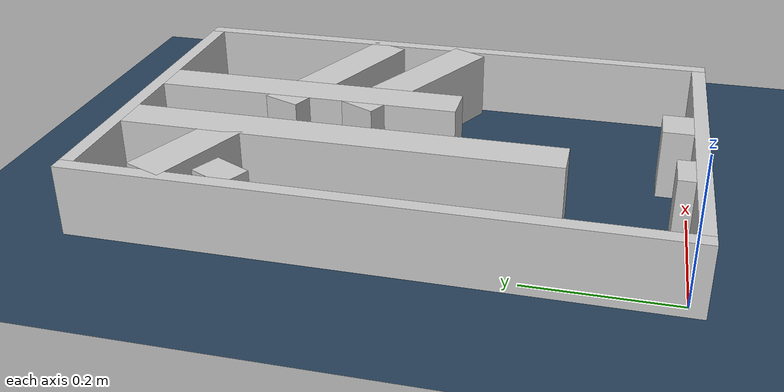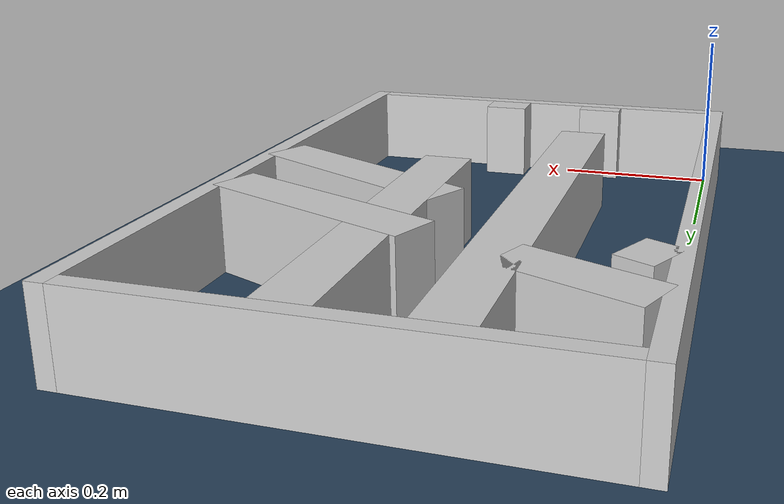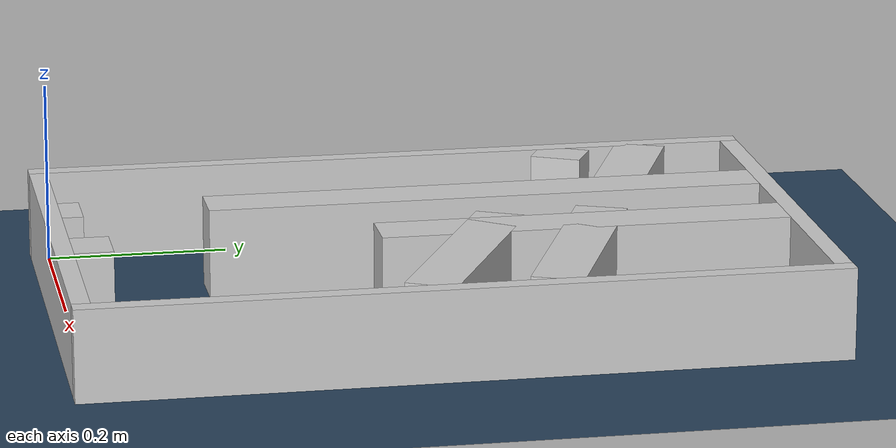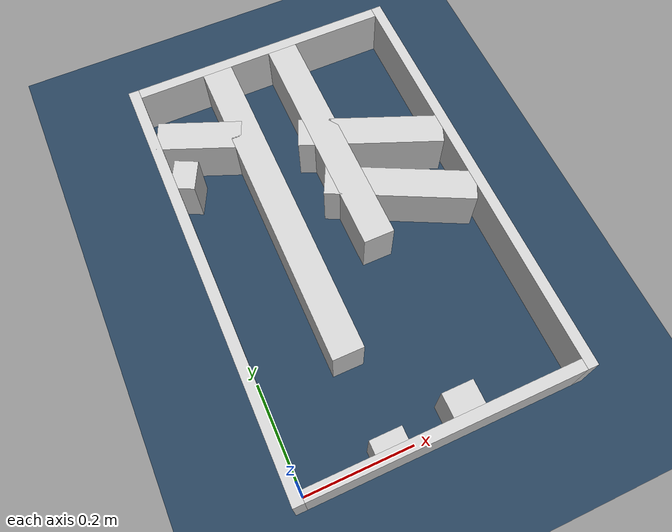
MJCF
<?xml version="1.0" ?>
<mujoco model="generated_real_template">
  <compiler angle="degree"/>
  <option timestep="0.002" integrator="implicitfast" iterations="100" cone="elliptic"/>
  <default>
    <geom density="1"/>
  </default>
  <asset>
    <texture builtin="gradient" height="3072" rgb1="0.3 0.5 0.7" rgb2="0 0 0" type="skybox" width="512"/>
    <texture builtin="checker" height="300" mark="edge" markrgb="0.8 0.8 0.8" name="groundplane" rgb1="0.2 0.3 0.4" rgb2="0.1 0.2 0.3" type="2d" width="300"/>
    <material name="groundplane" reflectance="0.2" texrepeat="5 5" texture="groundplane" texuniform="true"/>
  </asset>
  <worldbody>
    <light dir="0 0 -1" directional="true" pos="0 0 1.5"/>
    <geom name="floor" type="plane" condim="4" friction="0.5 0.005 0.001" material="groundplane" size="0 0 0.05"/>
    <body name="walls">
      <geom name="wall_boundary_left" type="box" condim="4" friction="1.0 0.005 0.0001" rgba="0.8 0.8 0.8 1" pos="-0.010000 0.387500 0.050000" euler="0 0 0.000000" size="0.010000 0.407500 0.050000"/>
      <geom name="wall_boundary_right" type="box" condim="4" friction="1.0 0.005 0.0001" rgba="0.8 0.8 0.8 1" pos="0.500000 0.387500 0.050000" euler="0 0 0.000000" size="0.010000 0.407500 0.050000"/>
      <geom name="wall_boundary_bottom" type="box" condim="4" friction="1.0 0.005 0.0001" rgba="0.8 0.8 0.8 1" pos="0.245000 -0.010000 0.050000" euler="0 0 0.000000" size="0.245000 0.010000 0.050000"/>
      <geom name="wall_boundary_top" type="box" condim="4" friction="1.0 0.005 0.0001" rgba="0.8 0.8 0.8 1" pos="0.245000 0.785000 0.050000" euler="0 0 0.000000" size="0.245000 0.010000 0.050000"/>
      <geom name="wall_inner_1_1" type="box" condim="4" friction="1.0 0.005 0.0001" rgba="0.8 0.8 0.8 1" pos="0.365561 0.531961 0.050000" euler="0 0 157.890248" size="0.134316 0.028500 0.050000"/>
      <geom name="wall_inner_1_2" type="box" condim="4" friction="1.0 0.005 0.0001" rgba="0.8 0.8 0.8 1" pos="0.071753 0.651323 0.050000" euler="0 0 157.890248" size="0.077448 0.028500 0.050000"/>
      <geom name="wall_inner_2_1" type="box" condim="4" friction="1.0 0.005 0.0001" rgba="0.8 0.8 0.8 1" pos="0.287130 0.021104 0.050000" euler="0 0 90.000000" size="0.021104 0.028500 0.050000"/>
      <geom name="wall_inner_2_2" type="box" condim="4" friction="1.0 0.005 0.0001" rgba="0.8 0.8 0.8 1" pos="0.287130 0.551471 0.050000" euler="0 0 90.000000" size="0.223529 0.028500 0.050000"/>
      <geom name="wall_inner_3_1" type="box" condim="4" friction="1.0 0.005 0.0001" rgba="0.8 0.8 0.8 1" pos="0.019611 0.582813 0.050000" euler="0 0 -26.442722" size="0.021902 0.028500 0.050000"/>
      <geom name="wall_inner_3_2" type="box" condim="4" friction="1.0 0.005 0.0001" rgba="0.8 0.8 0.8 1" pos="0.367864 0.409615 0.050000" euler="0 0 -26.442722" size="0.136407 0.028500 0.050000"/>
      <geom name="wall_inner_4_1" type="box" condim="4" friction="1.0 0.005 0.0001" rgba="0.8 0.8 0.8 1" pos="0.152450 0.011630 0.050000" euler="0 0 90.000000" size="0.011630 0.028500 0.050000"/>
      <geom name="wall_inner_4_2" type="box" condim="4" friction="1.0 0.005 0.0001" rgba="0.8 0.8 0.8 1" pos="0.152450 0.467396 0.050000" euler="0 0 90.000000" size="0.307604 0.028500 0.050000"/>
    </body>
  </worldbody>
</mujoco>
